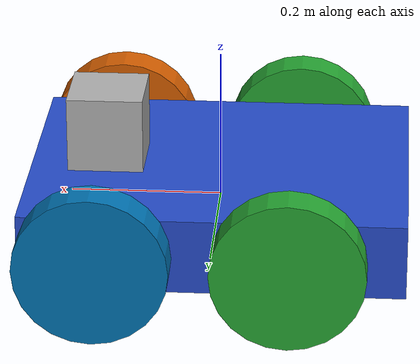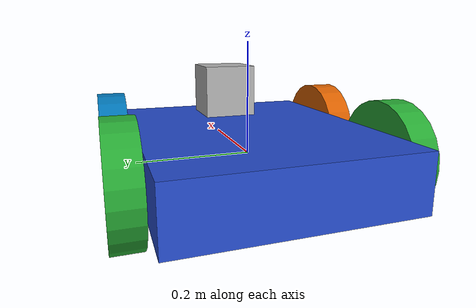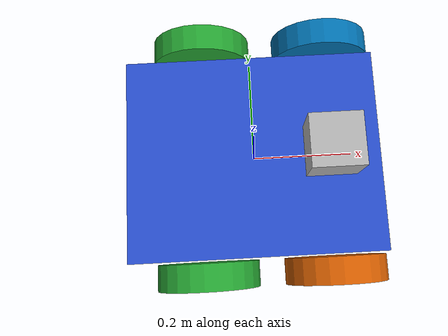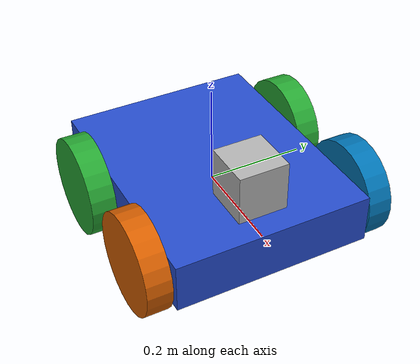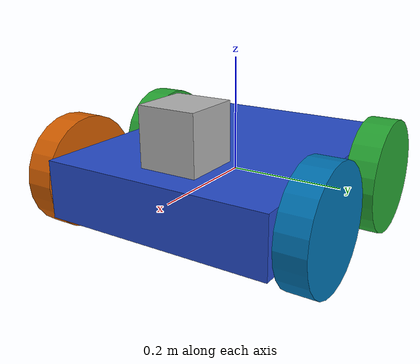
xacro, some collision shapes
<?xml version='1.0'?>

<robot name="my_robot" xmlns:xacro="http://www.ros.org/wiki/xacro">
  <xacro:include filename="$(find my_robot)/urdf/my_robot.gazebo" />

  <link name="robot_footprint"></link>

  <joint name="robot_footprint_joint" type="fixed">
    <origin xyz="0 0 0" rpy="0 0 0" />
    <parent link="robot_footprint"/>
    <child link="chassis" />
  </joint>

  <link name='chassis'>
    <pose>0 0 0.1 0 0 0</pose>

    <inertial>
      <mass value="15.0"/>
      <origin xyz="0.0 0 0" rpy=" 0 0 0"/>
      <inertia
          ixx="0.1" ixy="0" ixz="0"
          iyy="0.1" iyz="0"
          izz="0.1"
      />
    </inertial>

    <collision name='chassis_collision'>
      <origin xyz="0 0 0" rpy=" 0 0 0"/>
      <geometry>
        <box size=".5 .4 .1"/>
      </geometry>
    </collision>

    <visual name='chassis_visual'>
      <origin xyz="0 0 0" rpy=" 0 0 0"/>
      <geometry>
        <box size=".5 .4 .1"/>
      </geometry>
    </visual>

    <collision name='back_caster_collision'>
      <origin xyz="-0.15 0 -0.05" rpy=" 0 0 0"/>
      <geometry>
        <sphere radius="0.0499"/>
      </geometry>
    </collision>

    <visual name='back_caster_visual'>
      <origin xyz="-0.15 0 -0.05" rpy=" 0 0 0"/>
      <geometry>
        <sphere radius="0.05"/>
      </geometry>
    </visual>

    <collision name='front_caster_collision'>
      <origin xyz="0.15 0 -0.05" rpy=" 0 0 0"/>
      <geometry>
        <sphere radius="0.0499"/>
      </geometry>
    </collision>

    <visual name='front_caster_visual'>
      <origin xyz="0.15 0 -0.05" rpy=" 0 0 0"/>
      <geometry>
        <sphere radius="0.05"/>
      </geometry>
    </visual>

  </link>

  <link name="left_wheel">
    <collision name='left_wheel_collision'>
      <origin xyz="0 0 0" rpy="0 1.5707 1.5707"/>
      <geometry>
        <cylinder radius="0.1" length="0.05"/>
      </geometry>
    </collision>

    <visual name='left_wheel_visual'>
      <origin xyz="0 0 0" rpy="0 1.5707 1.5707"/>
      <geometry>
        <cylinder radius="0.1" length="0.05"/>
      </geometry>
    </visual>

    <inertial>
      <mass value="5.0"/>
      <origin xyz="0.0 0 0" rpy="0 1.5707 1.5707"/>
      <inertia
          ixx="0.1" ixy="0" ixz="0"
          iyy="0.1" iyz="0"
          izz="0.1"
      />
    </inertial>
  </link>

  <link name="right_wheel">
    <collision name='right_wheel_collision'>
      <origin xyz="0 0 0" rpy="0 1.5707 1.5707"/>
      <geometry>
        <cylinder radius="0.1" length="0.05"/>
      </geometry>
    </collision>

    <visual name='right_wheel_visual'>
      <origin xyz="0 0 0" rpy="0 1.5707 1.5707"/>
      <geometry>
        <cylinder radius="0.1" length="0.05"/>
      </geometry>
    </visual>

    <inertial>
      <mass value="5.0"/>
      <origin xyz="0.0 0 0" rpy="0 1.5707 1.5707"/>
      <inertia
          ixx="0.1" ixy="0" ixz="0"
          iyy="0.1" iyz="0"
          izz="0.1"
      />
    </inertial>
  </link>

  <!-- two new added front wheel -->
  <link name="front_left_wheel">
    <collision name='front_left_wheel_collision'>
      <origin xyz="0 0 0" rpy="0 1.5707 1.5707"/>
      <geometry>
        <cylinder radius="0.1" length="0.05"/>
      </geometry>
    </collision>

    <visual name='front_left_wheel_visual'>
      <origin xyz="0 0 0" rpy="0 1.5707 1.5707"/>
      <geometry>
        <cylinder radius="0.1" length="0.05"/>
      </geometry>
    </visual>

    <inertial>
      <mass value="5.0"/>
      <origin xyz="0.0 0 0" rpy="0 1.5707 1.5707"/>
      <inertia
          ixx="0.1" ixy="0" ixz="0"
          iyy="0.1" iyz="0"
          izz="0.1"
      />
    </inertial>
  </link>

  <link name="front_right_wheel">
    <collision name='front_right_wheel_collision'>
      <origin xyz="0 0 0" rpy="0 1.5707 1.5707"/>
      <geometry>
        <cylinder radius="0.1" length="0.05"/>
      </geometry>
    </collision>

    <visual name='front_right_wheel_visual'>
      <origin xyz="0 0 0" rpy="0 1.5707 1.5707"/>
      <geometry>
        <cylinder radius="0.1" length="0.05"/>
      </geometry>
    </visual>

    <inertial>
      <mass value="5.0"/>
      <origin xyz="0.0 0 0" rpy="0 1.5707 1.5707"/>
      <inertia
          ixx="0.1" ixy="0" ixz="0"
          iyy="0.1" iyz="0"
          izz="0.1"
      />
    </inertial>
  </link>

  <!-- joints -->

  <joint type="continuous" name="left_wheel_hinge">
    <origin xyz="-0.1 0.23 0" rpy="0 0 0"/>
    <child link="left_wheel"/>
    <parent link="chassis"/>
    <axis xyz="0 1 0" rpy="0 0 0"/>
    <limit effort="10000" velocity="1000"/>
    <dynamics damping="1.0" friction="1.0"/>
  </joint>

  <joint type="continuous" name="right_wheel_hinge">
    <origin xyz="-0.1 -0.23 0" rpy="0 0 0"/>
    <child link="right_wheel"/>
    <parent link="chassis"/>
    <axis xyz="0 1 0" rpy="0 0 0"/>
    <limit effort="10000" velocity="1000"/>
    <dynamics damping="1.0" friction="1.0"/>
  </joint>

  <joint type="continuous" name="front_left_wheel_hinge">
    <origin xyz="0.15 0.23 0" rpy="0 0 0"/>
    <child link="front_left_wheel"/>
    <parent link="chassis"/>
    <axis xyz="0 1 0" rpy="0 0 0"/>
    <limit effort="10000" velocity="1000"/>
    <dynamics damping="1.0" friction="1.0"/>
  </joint>

  <joint type="continuous" name="front_right_wheel_hinge">
    <origin xyz="0.15 -0.23 0" rpy="0 0 0"/>
    <child link="front_right_wheel"/>
    <parent link="chassis"/>
    <axis xyz="0 1 0" rpy="0 0 0"/>
    <limit effort="10000" velocity="1000"/>
    <dynamics damping="1.0" friction="1.0"/>
  </joint>

  <link name="camera">
    <collision name='camera_collision'>
      <origin xyz="0 0 0" rpy="0 0 0"/>
      <geometry>
        <box size="0.05 0.05 0.05"/>
      </geometry>
    </collision>

    <visual name='camera_visual'>
      <origin xyz="0 0 0" rpy="0 0 0"/>
      <geometry>
        <box size="0.05 0.05 0.05"/>
      </geometry>
    </visual>

    <inertial>
      <mass value="0.1"/>
      <origin xyz="0.0 0 0" rpy="0 0 0"/>
      <inertia
          ixx="1e-6" ixy="0" ixz="0"
          iyy="1e-6" iyz="0"
          izz="1e-6"
      />
    </inertial>
  </link>

  <joint type="fixed" name="camera_joint">
    <origin xyz="0.2 0 0" rpy="0 0 0"/>
    <child link="camera"/>
    <parent link="chassis"/>
    <axis xyz="0 1 0" rpy="0 0 0"/>
  </joint>

  <link name="hokuyo">
    <collision name='hokuyo_collision'>
      <origin xyz="0 0 0" rpy="0 0 0"/>
      <geometry>
        <box size="0.1 0.1 0.1"/>
      </geometry>
    </collision>

    <visual name='hokuyo_visual'>
      <origin xyz="0 0 0" rpy="0 0 0"/>
      <geometry>
        <mesh filename="package://my_robot/meshes/hokuyo.dae"/>
      </geometry>
    </visual>

    <inertial>
      <mass value="1e-5"/>
      <origin xyz="0.0 0 0" rpy="0 0 0"/>
      <inertia
          ixx="1e-6" ixy="0" ixz="0"
          iyy="1e-6" iyz="0"
          izz="1e-6"
      />
    </inertial>
  </link>

  <joint type="fixed" name="hokuyo_joint">
    <origin xyz="0.15 0 0.1" rpy="0 0 0"/>
    <child link="hokuyo"/>
    <parent link="chassis"/>
    <axis xyz="0 1 0" rpy="0 0 0"/>
  </joint>

<gazebo reference="left_wheel">
    <material>Gazebo/Green</material>
</gazebo>

<gazebo reference="right_wheel">
    <material>Gazebo/Green</material>
</gazebo>

<gazebo reference="chassis">
    <material>Gazebo/Blue</material>
</gazebo>

<gazebo reference="camera">
    <material>Gazebo/Red</material>
</gazebo>

</robot>
